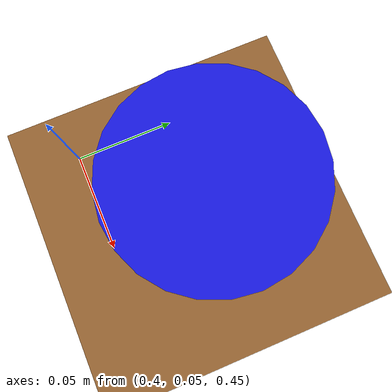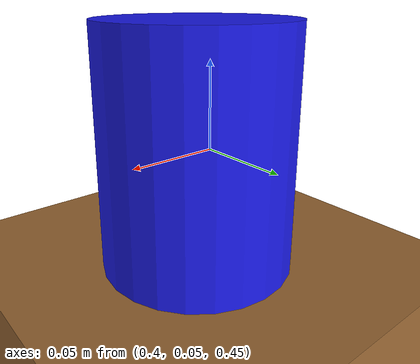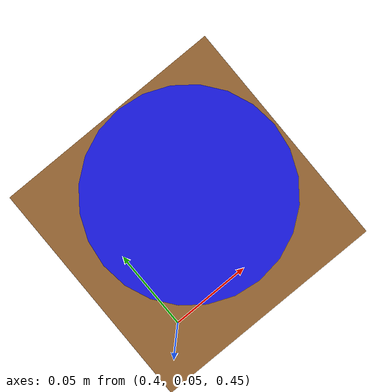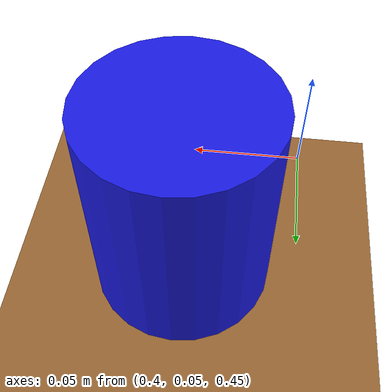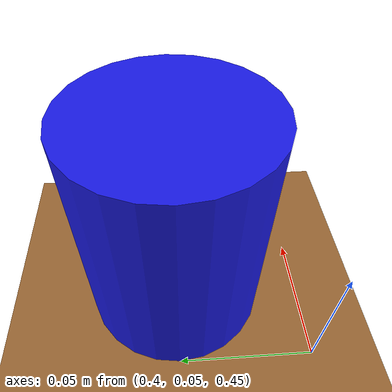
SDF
<?xml version="1.0"?>
<sdf version="1.8">
  <world name="pick_scene">

    <!-- Physics -->
    <physics name="1ms" type="ignored">
      <max_step_size>0.001</max_step_size>
      <real_time_factor>1.0</real_time_factor>
    </physics>

    <!-- Required Gazebo plugins -->
    <plugin filename="gz-sim-physics-system" name="gz::sim::systems::Physics"/>
    <plugin filename="gz-sim-user-commands-system" name="gz::sim::systems::UserCommands"/>
    <plugin filename="gz-sim-scene-broadcaster-system" name="gz::sim::systems::SceneBroadcaster"/>
    <plugin filename="gz-sim-sensors-system" name="gz::sim::systems::Sensors">
      <render_engine>ogre2</render_engine>
    </plugin>

    <!-- Sunlight -->
    <light name="sun" type="directional">
      <cast_shadows>true</cast_shadows>
      <pose>0 0 10 0 0 0</pose>
      <diffuse>0.8 0.8 0.8 1</diffuse>
      <specular>0.2 0.2 0.2 1</specular>
      <direction>-0.5 0.1 -0.9</direction>
    </light>

    <!-- Ground plane -->
    <model name="ground_plane">
      <static>true</static>
      <link name="link">
        <collision name="collision">
          <geometry>
            <plane><normal>0 0 1</normal><size>100 100</size></plane>
          </geometry>
        </collision>
        <visual name="visual">
          <geometry>
            <plane><normal>0 0 1</normal><size>100 100</size></plane>
          </geometry>
          <material>
            <ambient>0.8 0.8 0.8 1</ambient>
            <diffuse>0.8 0.8 0.8 1</diffuse>
          </material>
        </visual>
      </link>
    </model>

    <!-- Table: 60x60cm top surface at z=0.425 (pose z=0.4 + half-height 0.025) -->
    <model name="table">
      <static>true</static>
      <pose>0.5 0 0.4 0 0 0</pose>
      <link name="link">
        <collision name="c">
          <geometry><box><size>0.6 0.6 0.05</size></box></geometry>
        </collision>
        <visual name="v">
          <geometry><box><size>0.6 0.6 0.05</size></box></geometry>
          <material>
            <ambient>0.6 0.4 0.2 1</ambient>
            <diffuse>0.6 0.4 0.2 1</diffuse>
          </material>
        </visual>
      </link>
    </model>

    <!-- Target cup: blue cylinder on the table
         Table top surface = 0.4 + 0.025 = 0.425
         Cup half-height   = 0.05
         Cup centre Z      = 0.425 + 0.05 = 0.475 -->
    <model name="target_cup">
      <pose>0.45 0.1 0.475 0 0 0</pose>
      <link name="link">
        <inertial>
          <mass>0.1</mass>
          <inertia><ixx>0.001</ixx><iyy>0.001</iyy><izz>0.001</izz></inertia>
        </inertial>
        <collision name="c">
          <geometry>
            <cylinder><radius>0.04</radius><length>0.1</length></cylinder>
          </geometry>
        </collision>
        <visual name="v">
          <geometry>
            <cylinder><radius>0.04</radius><length>0.1</length></cylinder>
          </geometry>
          <material>
            <ambient>0.1 0.1 0.9 1</ambient>
            <diffuse>0.1 0.1 0.9 1</diffuse>
            <specular>0.5 0.5 0.5 1</specular>
          </material>
        </visual>
      </link>
    </model>

  </world>
</sdf>
